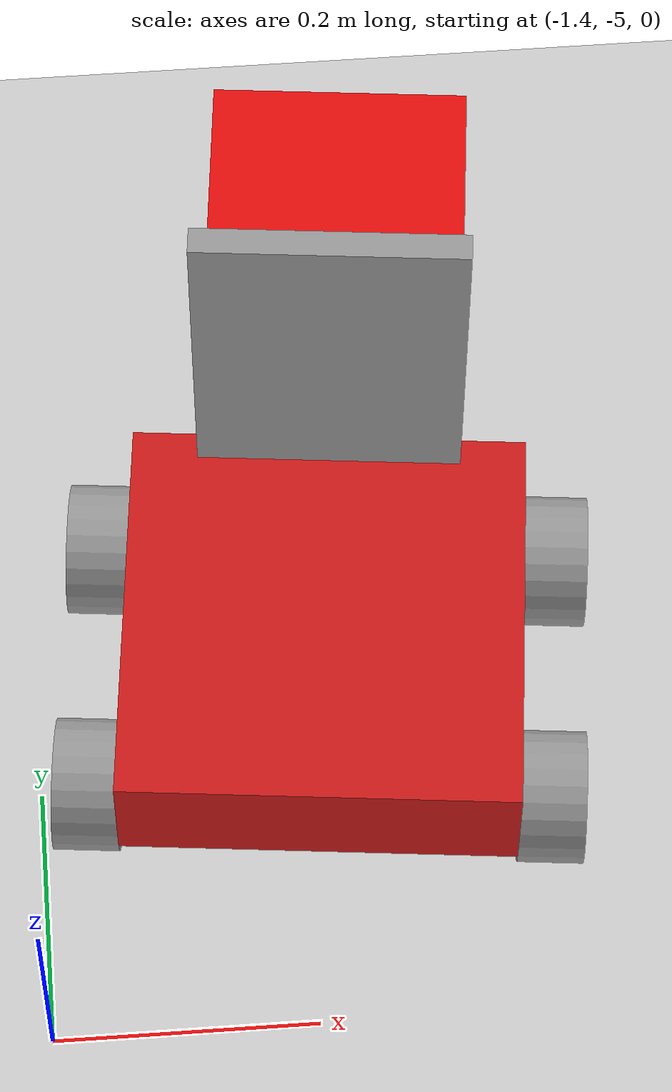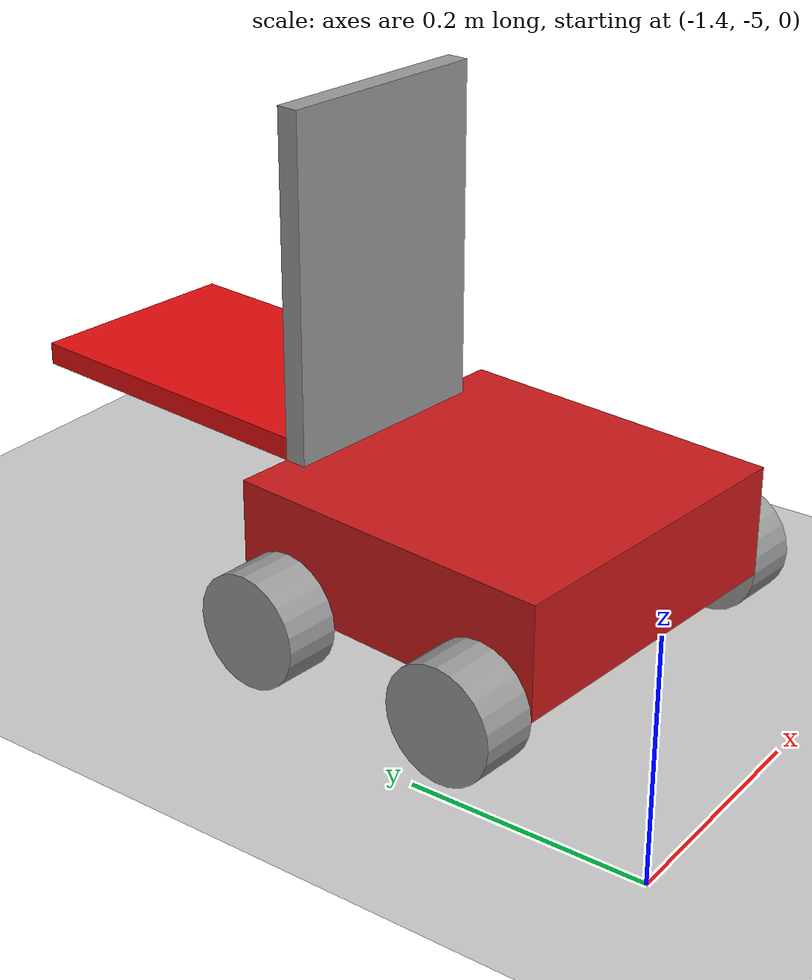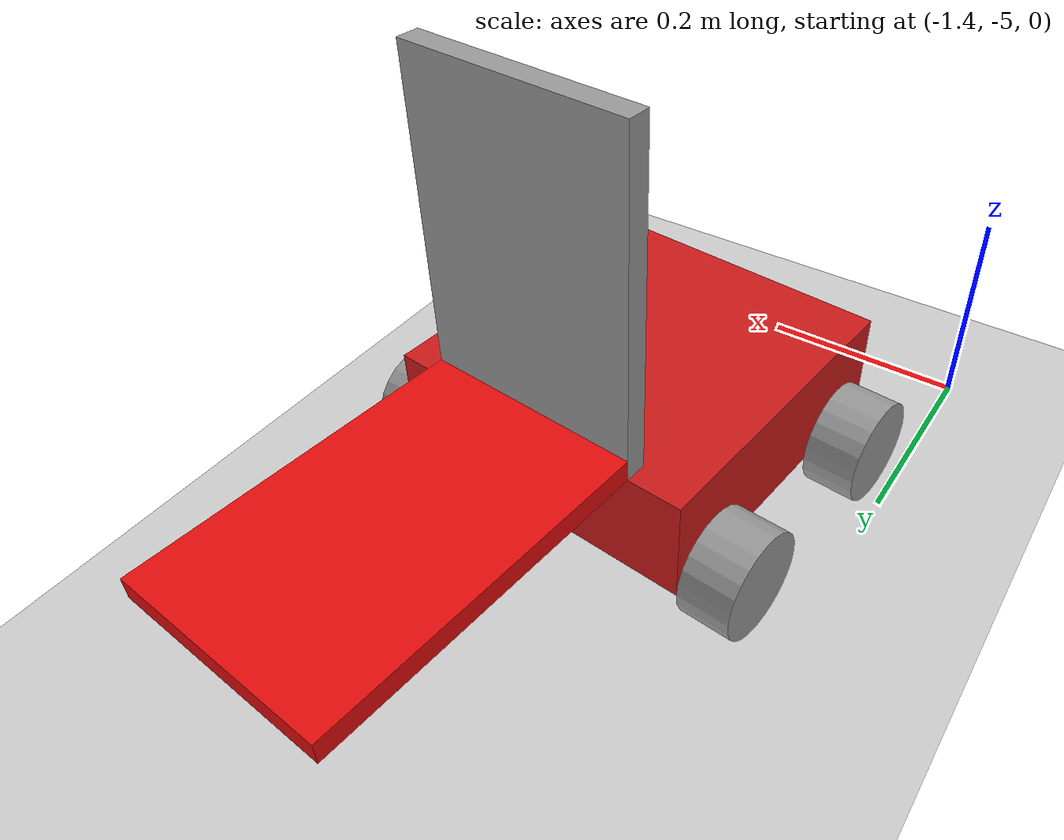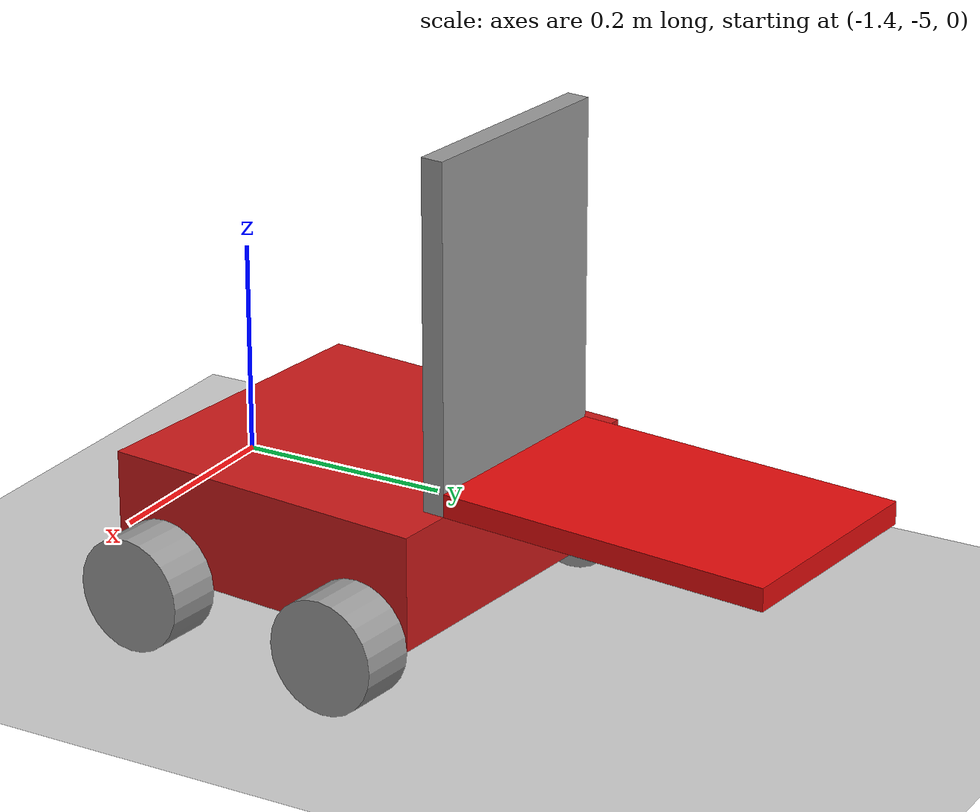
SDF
<sdf version="1.6">
 <world name="default">
  <model name="ground_plane">
   <static>1</static>
   <link name="link">
    <collision name="collision">
     <geometry><plane><normal>0 0 1</normal><size>100 100</size></plane></geometry>
     <surface><friction><ode><mu>100</mu><mu2>50</mu2></ode></friction></surface>
    </collision>
    <visual name="visual">
     <cast_shadows>0</cast_shadows>
     <geometry><plane><normal>0 0 1</normal><size>100 100</size></plane></geometry>
     <material>
      <script><uri>file://media/materials/scripts/gazebo.material</uri><name>Gazebo/Grey</name></script>
     </material>
    </visual>
   </link>
  </model>
  <model name="StoolMover_0">
   <link name="link_0">
    <pose>0 -0.062857 -0.008571 0 -0 0</pose>
    <inertial>
     <mass>1</mass>
     <inertia>
      <ixx>0.166667</ixx>
      <ixy>0</ixy>
      <ixz>0</ixz>
      <iyy>0.166667</iyy>
      <iyz>0</iyz>
      <izz>0.166667</izz>
     </inertia>
    </inertial>
    <visual name="visual">
     <geometry><box><size>0.3 0.3 0.1</size></box></geometry>
     <material>
      <lighting>1</lighting>
      <script><uri>file://media/materials/scripts/gazebo.material</uri><name>Gazebo/Grey</name></script>
      <shader type="pixel"><normal_map>__default__</normal_map></shader>
      <ambient>0.8 0.1 0.1 1</ambient>
      <diffuse>0.7 0.7 0.7 1</diffuse>
      <specular>0.01 0.01 0.01 1</specular>
      <emissive>0 0 0 1</emissive>
     </material>
    </visual>
    <collision name="collision">
     <geometry><box><size>0.3 0.3 0.1</size></box></geometry>
     <surface>
      <friction>
       <ode><mu>1</mu><mu2>1</mu2><fdir1>0 0 0</fdir1><slip1>0</slip1><slip2>0</slip2></ode>
       <torsional>
        <coefficient>1</coefficient>
        <patch_radius>0</patch_radius>
        <surface_radius>0</surface_radius>
        <use_patch_radius>1</use_patch_radius>
        <ode><slip>0</slip></ode>
       </torsional>
      </friction>
      <bounce><restitution_coefficient>0</restitution_coefficient><threshold>1e+06</threshold></bounce>
      <contact>
       <collide_without_contact>0</collide_without_contact>
       <collide_without_contact_bitmask>1</collide_without_contact_bitmask>
       <collide_bitmask>1</collide_bitmask>
       <ode>
        <soft_cfm>0</soft_cfm>
        <soft_erp>0.2</soft_erp>
        <kp>1e+13</kp>
        <kd>1</kd>
        <max_vel>0.01</max_vel>
        <min_depth>0</min_depth>
       </ode>
       <bullet>
        <split_impulse>1</split_impulse>
        <split_impulse_penetration_threshold>-0.01</split_impulse_penetration_threshold>
        <soft_cfm>0</soft_cfm>
        <soft_erp>0.2</soft_erp>
        <kp>1e+13</kp>
        <kd>1</kd>
       </bullet>
      </contact>
     </surface>
    </collision>
   </link>
   <link name="link_1">
    <pose>0.175 0.037143 -0.058571 0 -0 0</pose>
    <inertial>
     <mass>1</mass>
     <inertia><ixx>0.145833</ixx><ixy>0</ixy><ixz>0</ixz><iyy>0.145833</iyy><iyz>0</iyz><izz>0.125</izz></inertia>
    </inertial>
    <visual name="visual">
     <pose>0 0 0 -3.14159 1.57079 -3.14159</pose>
     <geometry><cylinder><radius>0.05</radius><length>0.05</length></cylinder></geometry>
     <material>
      <lighting>1</lighting>
      <script><uri>file://media/materials/scripts/gazebo.material</uri><name>Gazebo/Grey</name></script>
      <shader type="pixel"><normal_map>__default__</normal_map></shader>
      <ambient>0.3 0.3 0.3 1</ambient>
      <diffuse>0.7 0.7 0.7 1</diffuse>
      <specular>0.01 0.01 0.01 1</specular>
      <emissive>0 0 0 1</emissive>
     </material>
    </visual>
    <collision name="collision">
     <pose>0 0 0 -3.14159 1.57079 -3.14159</pose>
     <geometry><cylinder><radius>0.05</radius><length>0.05</length></cylinder></geometry>
     <surface>
      <friction>
       <ode><mu>1</mu><mu2>1</mu2><fdir1>0 0 0</fdir1><slip1>0</slip1><slip2>0</slip2></ode>
       <torsional>
        <coefficient>1</coefficient>
        <patch_radius>0</patch_radius>
        <surface_radius>0</surface_radius>
        <use_patch_radius>1</use_patch_radius>
        <ode><slip>0</slip></ode>
       </torsional>
      </friction>
      <bounce><restitution_coefficient>0</restitution_coefficient><threshold>1e+06</threshold></bounce>
      <contact>
       <collide_without_contact>0</collide_without_contact>
       <collide_without_contact_bitmask>1</collide_without_contact_bitmask>
       <collide_bitmask>1</collide_bitmask>
       <ode>
        <soft_cfm>0</soft_cfm>
        <soft_erp>0.2</soft_erp>
        <kp>1e+13</kp>
        <kd>1</kd>
        <max_vel>0.01</max_vel>
        <min_depth>0</min_depth>
       </ode>
       <bullet>
        <split_impulse>1</split_impulse>
        <split_impulse_penetration_threshold>-0.01</split_impulse_penetration_threshold>
        <soft_cfm>0</soft_cfm>
        <soft_erp>0.2</soft_erp>
        <kp>1e+13</kp>
        <kd>1</kd>
       </bullet>
      </contact>
     </surface>
    </collision>
   </link>
   <link name="link_1_clone">
    <pose>-0.175 0.037143 -0.058571 0 -0 0</pose>
    <inertial>
     <mass>1</mass>
     <inertia><ixx>0.145833</ixx><ixy>0</ixy><ixz>0</ixz><iyy>0.145833</iyy><iyz>0</iyz><izz>0.125</izz></inertia>
    </inertial>
    <visual name="visual">
     <pose>0 0 0 3.14159 1.57079 3.14159</pose>
     <geometry><cylinder><radius>0.05</radius><length>0.05</length></cylinder></geometry>
     <material>
      <lighting>1</lighting>
      <script><uri>file://media/materials/scripts/gazebo.material</uri><name>Gazebo/Grey</name></script>
      <shader type="pixel"><normal_map>__default__</normal_map></shader>
      <ambient>0.3 0.3 0.3 1</ambient>
      <diffuse>0.7 0.7 0.7 1</diffuse>
      <specular>0.01 0.01 0.01 1</specular>
      <emissive>0 0 0 1</emissive>
     </material>
    </visual>
    <collision name="collision">
     <pose>0 0 0 3.14159 1.57079 3.14159</pose>
     <geometry><cylinder><radius>0.05</radius><length>0.05</length></cylinder></geometry>
     <surface>
      <friction>
       <ode><mu>1</mu><mu2>1</mu2><fdir1>0 0 0</fdir1><slip1>0</slip1><slip2>0</slip2></ode>
       <torsional>
        <coefficient>1</coefficient>
        <patch_radius>0</patch_radius>
        <surface_radius>0</surface_radius>
        <use_patch_radius>1</use_patch_radius>
        <ode><slip>0</slip></ode>
       </torsional>
      </friction>
      <bounce><restitution_coefficient>0</restitution_coefficient><threshold>1e+06</threshold></bounce>
      <contact>
       <collide_without_contact>0</collide_without_contact>
       <collide_without_contact_bitmask>1</collide_without_contact_bitmask>
       <collide_bitmask>1</collide_bitmask>
       <ode>
        <soft_cfm>0</soft_cfm>
        <soft_erp>0.2</soft_erp>
        <kp>1e+13</kp>
        <kd>1</kd>
        <max_vel>0.01</max_vel>
        <min_depth>0</min_depth>
       </ode>
       <bullet>
        <split_impulse>1</split_impulse>
        <split_impulse_penetration_threshold>-0.01</split_impulse_penetration_threshold>
        <soft_cfm>0</soft_cfm>
        <soft_erp>0.2</soft_erp>
        <kp>1e+13</kp>
        <kd>1</kd>
       </bullet>
      </contact>
     </surface>
    </collision>
   </link>
   <link name="link_1_clone_0">
    <pose>-0.175 -0.162857 -0.058571 0 -0 0</pose>
    <inertial>
     <mass>1</mass>
     <inertia><ixx>0.145833</ixx><ixy>0</ixy><ixz>0</ixz><iyy>0.145833</iyy><iyz>0</iyz><izz>0.125</izz></inertia>
    </inertial>
    <visual name="visual">
     <pose>0 0 0 3.14159 1.57079 3.14159</pose>
     <geometry><cylinder><radius>0.05</radius><length>0.05</length></cylinder></geometry>
     <material>
      <lighting>1</lighting>
      <script><uri>file://media/materials/scripts/gazebo.material</uri><name>Gazebo/Grey</name></script>
      <shader type="pixel"><normal_map>__default__</normal_map></shader>
      <ambient>0.3 0.3 0.3 1</ambient>
      <diffuse>0.7 0.7 0.7 1</diffuse>
      <specular>0.01 0.01 0.01 1</specular>
      <emissive>0 0 0 1</emissive>
     </material>
    </visual>
    <collision name="collision">
     <pose>0 0 0 3.14159 1.57079 3.14159</pose>
     <geometry><cylinder><radius>0.05</radius><length>0.05</length></cylinder></geometry>
     <surface>
      <friction>
       <ode><mu>1</mu><mu2>1</mu2><fdir1>0 0 0</fdir1><slip1>0</slip1><slip2>0</slip2></ode>
       <torsional>
        <coefficient>1</coefficient>
        <patch_radius>0</patch_radius>
        <surface_radius>0</surface_radius>
        <use_patch_radius>1</use_patch_radius>
        <ode><slip>0</slip></ode>
       </torsional>
      </friction>
      <bounce><restitution_coefficient>0</restitution_coefficient><threshold>1e+06</threshold></bounce>
      <contact>
       <collide_without_contact>0</collide_without_contact>
       <collide_without_contact_bitmask>1</collide_without_contact_bitmask>
       <collide_bitmask>1</collide_bitmask>
       <ode>
        <soft_cfm>0</soft_cfm>
        <soft_erp>0.2</soft_erp>
        <kp>1e+13</kp>
        <kd>1</kd>
        <max_vel>0.01</max_vel>
        <min_depth>0</min_depth>
       </ode>
       <bullet>
        <split_impulse>1</split_impulse>
        <split_impulse_penetration_threshold>-0.01</split_impulse_penetration_threshold>
        <soft_cfm>0</soft_cfm>
        <soft_erp>0.2</soft_erp>
        <kp>1e+13</kp>
        <kd>1</kd>
       </bullet>
      </contact>
     </surface>
    </collision>
   </link>
   <link name="link_1_clone_1">
    <pose>0.175 -0.162857 -0.058571 0 -0 0</pose>
    <inertial>
     <mass>1</mass>
     <inertia><ixx>0.145833</ixx><ixy>0</ixy><ixz>0</ixz><iyy>0.145833</iyy><iyz>0</iyz><izz>0.125</izz></inertia>
    </inertial>
    <visual name="visual">
     <pose>0 0 0 3.14159 1.57079 3.14159</pose>
     <geometry><cylinder><radius>0.05</radius><length>0.05</length></cylinder></geometry>
     <material>
      <lighting>1</lighting>
      <script><uri>file://media/materials/scripts/gazebo.material</uri><name>Gazebo/Grey</name></script>
      <shader type="pixel"><normal_map>__default__</normal_map></shader>
      <ambient>0.3 0.3 0.3 1</ambient>
      <diffuse>0.7 0.7 0.7 1</diffuse>
      <specular>0.01 0.01 0.01 1</specular>
      <emissive>0 0 0 1</emissive>
     </material>
    </visual>
    <collision name="collision">
     <pose>0 0 0 3.14159 1.57079 3.14159</pose>
     <geometry><cylinder><radius>0.05</radius><length>0.05</length></cylinder></geometry>
     <surface>
      <friction>
       <ode><mu>1</mu><mu2>1</mu2><fdir1>0 0 0</fdir1><slip1>0</slip1><slip2>0</slip2></ode>
       <torsional>
        <coefficient>1</coefficient>
        <patch_radius>0</patch_radius>
        <surface_radius>0</surface_radius>
        <use_patch_radius>1</use_patch_radius>
        <ode><slip>0</slip></ode>
       </torsional>
      </friction>
      <bounce><restitution_coefficient>0</restitution_coefficient><threshold>1e+06</threshold></bounce>
      <contact>
       <collide_without_contact>0</collide_without_contact>
       <collide_without_contact_bitmask>1</collide_without_contact_bitmask>
       <collide_bitmask>1</collide_bitmask>
       <ode>
        <soft_cfm>0</soft_cfm>
        <soft_erp>0.2</soft_erp>
        <kp>1e+13</kp>
        <kd>1</kd>
        <max_vel>0.01</max_vel>
        <min_depth>0</min_depth>
       </ode>
       <bullet>
        <split_impulse>1</split_impulse>
        <split_impulse_penetration_threshold>-0.01</split_impulse_penetration_threshold>
        <soft_cfm>0</soft_cfm>
        <soft_erp>0.2</soft_erp>
        <kp>1e+13</kp>
        <kd>1</kd>
       </bullet>
      </contact>
     </surface>
    </collision>
   </link>
   <link name="link_2">
    <pose>0 0.077143 0.191429 0 -0 0</pose>
    <inertial>
     <mass>1</mass>
     <inertia>
      <ixx>0.166667</ixx>
      <ixy>0</ixy>
      <ixz>0</ixz>
      <iyy>0.166667</iyy>
      <iyz>0</iyz>
      <izz>0.166667</izz>
     </inertia>
    </inertial>
    <visual name="visual">
     <geometry><box><size>0.2 0.02 0.3</size></box></geometry>
     <material>
      <lighting>1</lighting>
      <script><uri>file://media/materials/scripts/gazebo.material</uri><name>Gazebo/Grey</name></script>
      <shader type="pixel"><normal_map>__default__</normal_map></shader>
      <ambient>0.3 0.3 0.3 1</ambient>
      <diffuse>0.7 0.7 0.7 1</diffuse>
      <specular>0.01 0.01 0.01 1</specular>
      <emissive>0 0 0 1</emissive>
     </material>
    </visual>
    <collision name="collision">
     <geometry><box><size>0.2 0.02 0.3</size></box></geometry>
     <surface>
      <friction>
       <ode><mu>1</mu><mu2>1</mu2><fdir1>0 0 0</fdir1><slip1>0</slip1><slip2>0</slip2></ode>
       <torsional>
        <coefficient>1</coefficient>
        <patch_radius>0</patch_radius>
        <surface_radius>0</surface_radius>
        <use_patch_radius>1</use_patch_radius>
        <ode><slip>0</slip></ode>
       </torsional>
      </friction>
      <bounce><restitution_coefficient>0</restitution_coefficient><threshold>1e+06</threshold></bounce>
      <contact>
       <collide_without_contact>0</collide_without_contact>
       <collide_without_contact_bitmask>1</collide_without_contact_bitmask>
       <collide_bitmask>1</collide_bitmask>
       <ode>
        <soft_cfm>0</soft_cfm>
        <soft_erp>0.2</soft_erp>
        <kp>1e+13</kp>
        <kd>1</kd>
        <max_vel>0.01</max_vel>
        <min_depth>0</min_depth>
       </ode>
       <bullet>
        <split_impulse>1</split_impulse>
        <split_impulse_penetration_threshold>-0.01</split_impulse_penetration_threshold>
        <soft_cfm>0</soft_cfm>
        <soft_erp>0.2</soft_erp>
        <kp>1e+13</kp>
        <kd>1</kd>
       </bullet>
      </contact>
     </surface>
    </collision>
   </link>
   <link name="link_2_clone">
    <pose>0 0.237143 0.051429 1.5708 -0 0</pose>
    <inertial>
     <mass>1</mass>
     <inertia>
      <ixx>0.166667</ixx>
      <ixy>0</ixy>
      <ixz>0</ixz>
      <iyy>0.166667</iyy>
      <iyz>0</iyz>
      <izz>0.166667</izz>
     </inertia>
    </inertial>
    <visual name="visual">
     <geometry><box><size>0.2 0.02 0.3</size></box></geometry>
     <material>
      <lighting>1</lighting>
      <script><uri>file://media/materials/scripts/gazebo.material</uri><name>Gazebo/Grey</name></script>
      <shader type="pixel"><normal_map>__default__</normal_map></shader>
      <ambient>0.9 0.05 0.05 1</ambient>
      <diffuse>0.7 0.7 0.7 1</diffuse>
      <specular>0.01 0.01 0.01 1</specular>
      <emissive>0 0 0 1</emissive>
     </material>
    </visual>
    <collision name="collision">
     <geometry><box><size>0.2 0.02 0.3</size></box></geometry>
     <surface>
      <friction>
       <ode><mu>1</mu><mu2>1</mu2><fdir1>0 0 0</fdir1><slip1>0</slip1><slip2>0</slip2></ode>
       <torsional>
        <coefficient>1</coefficient>
        <patch_radius>0</patch_radius>
        <surface_radius>0</surface_radius>
        <use_patch_radius>1</use_patch_radius>
        <ode><slip>0</slip></ode>
       </torsional>
      </friction>
      <bounce><restitution_coefficient>0</restitution_coefficient><threshold>1e+06</threshold></bounce>
      <contact>
       <collide_without_contact>0</collide_without_contact>
       <collide_without_contact_bitmask>1</collide_without_contact_bitmask>
       <collide_bitmask>1</collide_bitmask>
       <ode>
        <soft_cfm>0</soft_cfm>
        <soft_erp>0.2</soft_erp>
        <kp>1e+13</kp>
        <kd>1</kd>
        <max_vel>0.01</max_vel>
        <min_depth>0</min_depth>
       </ode>
       <bullet>
        <split_impulse>1</split_impulse>
        <split_impulse_penetration_threshold>-0.01</split_impulse_penetration_threshold>
        <soft_cfm>0</soft_cfm>
        <soft_erp>0.2</soft_erp>
        <kp>1e+13</kp>
        <kd>1</kd>
       </bullet>
      </contact>
     </surface>
    </collision>
   </link>
   <joint name="link_0_JOINT_1" type="revolute">
    <parent>link_0</parent>
    <child>link_1</child>
    <axis>
     <xyz>1 0 0</xyz>
     <use_parent_model_frame>0</use_parent_model_frame>
     <limit>
      <lower>-1.79769e+308</lower>
      <upper>1.79769e+308</upper>
      <effort>-1</effort>
      <velocity>-1</velocity>
     </limit>
     <dynamics>
      <spring_reference>0</spring_reference>
      <spring_stiffness>0</spring_stiffness>
      <damping>0</damping>
      <friction>0</friction>
     </dynamics>
    </axis>
    <physics>
     <ode><limit><cfm>0</cfm><erp>0.2</erp></limit><suspension><cfm>0</cfm><erp>0.2</erp></suspension></ode>
    </physics>
   </joint>
   <joint name="link_0_JOINT_2" type="fixed">
    <parent>link_0</parent>
    <child>link_2</child>
    <physics>
     <ode><limit><cfm>0</cfm><erp>0.2</erp></limit><suspension><cfm>0</cfm><erp>0.2</erp></suspension></ode>
    </physics>
   </joint>
   <joint name="link_0_JOINT_4" type="revolute">
    <parent>link_0</parent>
    <child>link_1_clone_1</child>
    <axis>
     <xyz>1 0 0</xyz>
     <use_parent_model_frame>0</use_parent_model_frame>
     <limit>
      <lower>-1.79769e+308</lower>
      <upper>1.79769e+308</upper>
      <effort>-1</effort>
      <velocity>-1</velocity>
     </limit>
     <dynamics>
      <spring_reference>0</spring_reference>
      <spring_stiffness>0</spring_stiffness>
      <damping>0</damping>
      <friction>0</friction>
     </dynamics>
    </axis>
    <physics>
     <ode><limit><cfm>0</cfm><erp>0.2</erp></limit><suspension><cfm>0</cfm><erp>0.2</erp></suspension></ode>
    </physics>
   </joint>
   <joint name="link_0_JOINT_5" type="revolute">
    <parent>link_0</parent>
    <child>link_1_clone</child>
    <axis>
     <xyz>1 0 0</xyz>
     <use_parent_model_frame>0</use_parent_model_frame>
     <limit>
      <lower>-1.79769e+308</lower>
      <upper>1.79769e+308</upper>
      <effort>-1</effort>
      <velocity>-1</velocity>
     </limit>
     <dynamics>
      <spring_reference>0</spring_reference>
      <spring_stiffness>0</spring_stiffness>
      <damping>0</damping>
      <friction>0</friction>
     </dynamics>
    </axis>
    <physics>
     <ode><limit><cfm>0</cfm><erp>0.2</erp></limit><suspension><cfm>0</cfm><erp>0.2</erp></suspension></ode>
    </physics>
   </joint>
   <joint name="link_0_JOINT_6" type="revolute">
    <parent>link_0</parent>
    <child>link_1_clone_0</child>
    <axis>
     <xyz>1 0 0</xyz>
     <use_parent_model_frame>0</use_parent_model_frame>
     <limit>
      <lower>-1.79769e+308</lower>
      <upper>1.79769e+308</upper>
      <effort>-1</effort>
      <velocity>-1</velocity>
     </limit>
     <dynamics>
      <spring_reference>0</spring_reference>
      <spring_stiffness>0</spring_stiffness>
      <damping>0</damping>
      <friction>0</friction>
     </dynamics>
    </axis>
    <physics>
     <ode><limit><cfm>0</cfm><erp>0.2</erp></limit><suspension><cfm>0</cfm><erp>0.2</erp></suspension></ode>
    </physics>
   </joint>
   <joint name="link_2_JOINT_3" type="prismatic">
    <parent>link_2</parent>
    <child>link_2_clone</child>
    <axis>
     <xyz>0 1 0</xyz>
     <use_parent_model_frame>0</use_parent_model_frame>
     <limit><lower>0</lower><upper>0.35</upper><effort>10</effort><velocity>1</velocity></limit>
     <dynamics>
      <spring_reference>0</spring_reference>
      <spring_stiffness>0</spring_stiffness>
      <damping>0</damping>
      <friction>0</friction>
     </dynamics>
    </axis>
    <physics>
     <ode><limit><cfm>0</cfm><erp>0.2</erp></limit><suspension><cfm>0</cfm><erp>0.2</erp></suspension></ode>
    </physics>
   </joint>
   <static>0</static>
   <pose>-1.17219 -4.6702 0.108571 -8e-06 -0 -0.100244</pose>
  </model>
 </world>
</sdf>
